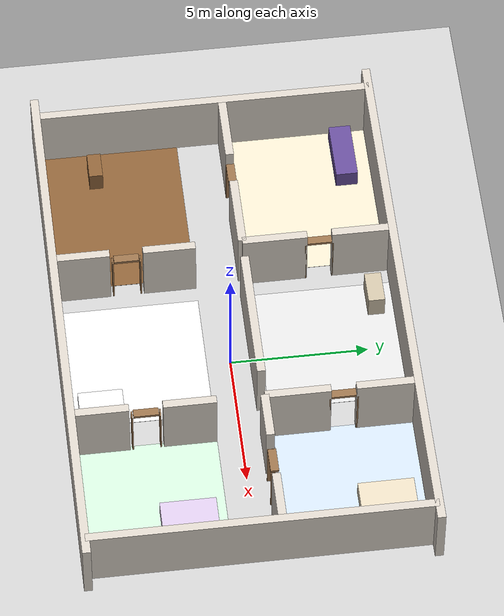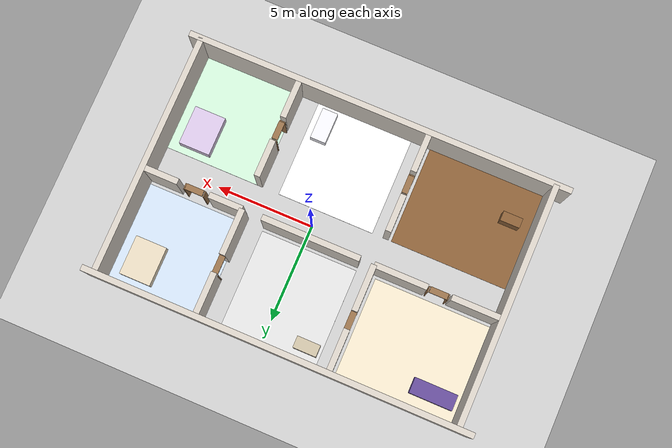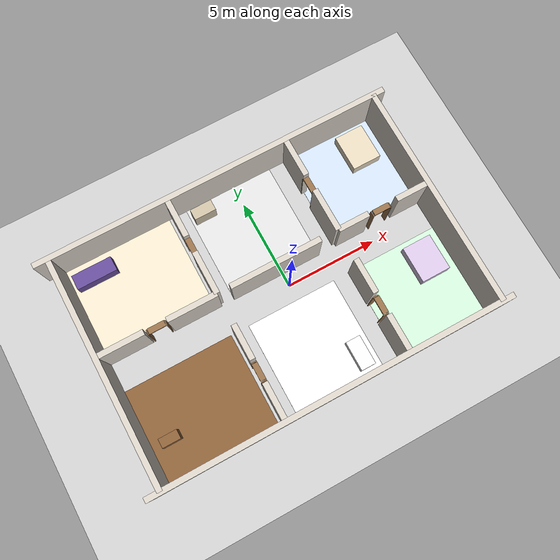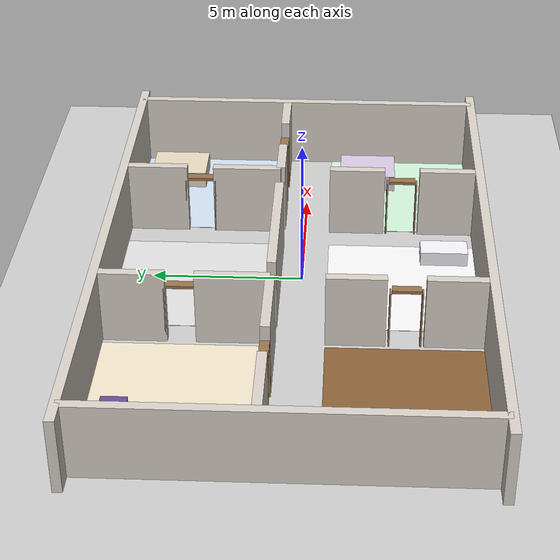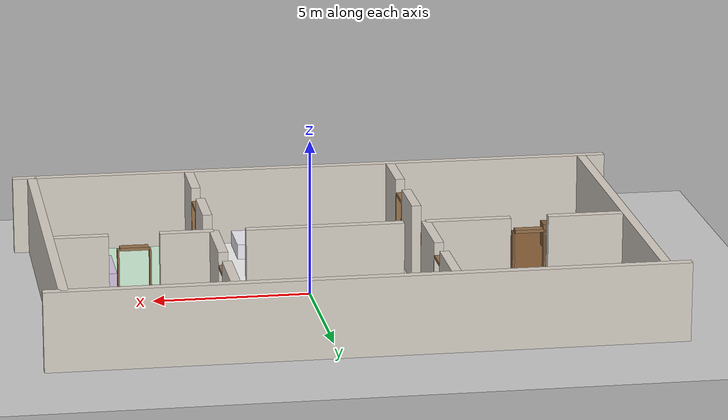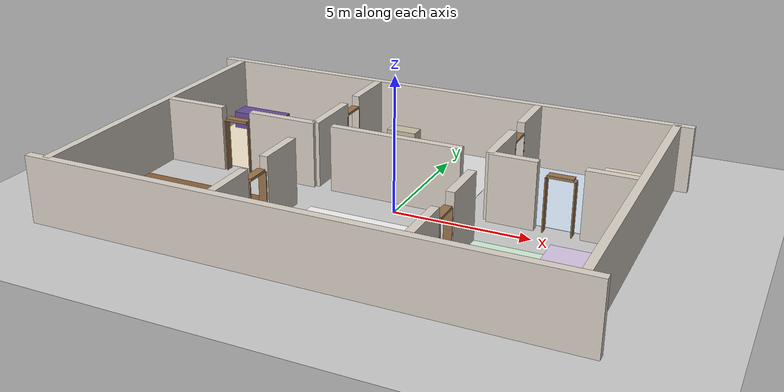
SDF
<?xml version="1.0" ?>
<sdf version="1.6">
  <world name="patrol_house">

    <!-- ======================================================
         ENVIRONMENT
    ====================================================== -->
    <include>
      <uri>model://ground_plane</uri>
    </include>

    <include>
      <uri>model://sun</uri>
    </include>

    <!-- ======================================================
         PHYSICS
    ====================================================== -->
    <physics type="ode">
      <ode>
        <solver>
          <type>quick</type>
          <iters>1000</iters>
          <sor>1.3</sor>
        </solver>
        <constraints>
          <cfm>0</cfm>
          <erp>0.2</erp>
          <contact_max_correcting_vel>100</contact_max_correcting_vel>
          <contact_surface_layer>0.001</contact_surface_layer>
        </constraints>
      </ode>
      <max_step_size>0.01</max_step_size>
      <real_time_factor>1</real_time_factor>
      <real_time_update_rate>100</real_time_update_rate>
      <gravity>0 0 -9.8</gravity>
    </physics>

    <!-- ======================================================
         SCENE LIGHTING
    ====================================================== -->
    <scene>
      <ambient>0.4 0.4 0.4 1</ambient>
      <background>0.7 0.7 0.7 1</background>
      <shadows>true</shadows>
    </scene>

    <!-- Ceiling lights (one per room) -->
    <light name="light_living_room" type="point">
      <pose>-6.85 3.65 2.4 0 0 0</pose>
      <diffuse>1 1 0.95 1</diffuse>
      <specular>0.2 0.2 0.2 1</specular>
      <attenuation><range>6</range><constant>0.3</constant><linear>0.1</linear><quadratic>0.01</quadratic></attenuation>
      <cast_shadows>false</cast_shadows>
    </light>
    <light name="light_kitchen" type="point">
      <pose>0.00 3.65 2.4 0 0 0</pose>
      <diffuse>1 1 0.95 1</diffuse>
      <specular>0.2 0.2 0.2 1</specular>
      <attenuation><range>6</range><constant>0.3</constant><linear>0.1</linear><quadratic>0.01</quadratic></attenuation>
      <cast_shadows>false</cast_shadows>
    </light>
    <light name="light_bedroom1" type="point">
      <pose>5.65 3.65 2.4 0 0 0</pose>
      <diffuse>1 1 0.95 1</diffuse>
      <specular>0.2 0.2 0.2 1</specular>
      <attenuation><range>6</range><constant>0.3</constant><linear>0.1</linear><quadratic>0.01</quadratic></attenuation>
      <cast_shadows>false</cast_shadows>
    </light>
    <light name="light_bedroom2" type="point">
      <pose>5.65 -3.35 2.4 0 0 0</pose>
      <diffuse>1 1 0.95 1</diffuse>
      <specular>0.2 0.2 0.2 1</specular>
      <attenuation><range>6</range><constant>0.3</constant><linear>0.1</linear><quadratic>0.01</quadratic></attenuation>
      <cast_shadows>false</cast_shadows>
    </light>
    <light name="light_bathroom" type="point">
      <pose>0.00 -3.35 2.4 0 0 0</pose>
      <diffuse>1 1 0.95 1</diffuse>
      <specular>0.2 0.2 0.2 1</specular>
      <attenuation><range>6</range><constant>0.3</constant><linear>0.1</linear><quadratic>0.01</quadratic></attenuation>
      <cast_shadows>false</cast_shadows>
    </light>
    <light name="light_hallway" type="point">
      <pose>-6.85 -3.35 2.4 0 0 0</pose>
      <diffuse>1 1 0.95 1</diffuse>
      <specular>0.2 0.2 0.2 1</specular>
      <attenuation><range>6</range><constant>0.3</constant><linear>0.1</linear><quadratic>0.01</quadratic></attenuation>
      <cast_shadows>false</cast_shadows>
    </light>

    <!-- ======================================================
         SHARED WALL MATERIAL (grey plaster)
    ====================================================== -->
    <!-- All walls share the same material block inline -->

    <!-- Outer South wall  (y = -6.0, full width) -->
    <model name="wall_outer_south">
      <static>true</static>
      <pose>-0.925 -6.0 1.25 0 0 0</pose>
      <link name="link">
        <collision name="col"><geometry><box><size>19.7 0.3 2.5</size></box></geometry></collision>
        <visual name="vis"><geometry><box><size>19.7 0.3 2.5</size></box></geometry>
          <material><ambient>0.85 0.82 0.78 1</ambient><diffuse>0.85 0.82 0.78 1</diffuse></material>
        </visual>
      </link>
    </model>

    <!-- Outer North wall  (y = 6.3, full width) -->
    <model name="wall_outer_north">
      <static>true</static>
      <pose>-0.925 6.3 1.25 0 0 0</pose>
      <link name="link">
        <collision name="col"><geometry><box><size>19.7 0.3 2.5</size></box></geometry></collision>
        <visual name="vis"><geometry><box><size>19.7 0.3 2.5</size></box></geometry>
          <material><ambient>0.85 0.82 0.78 1</ambient><diffuse>0.85 0.82 0.78 1</diffuse></material>
        </visual>
      </link>
    </model>

    <!-- Outer West wall  (x = -10.0, full depth) -->
    <model name="wall_outer_west">
      <static>true</static>
      <pose>-10.0 0.15 1.25 0 0 0</pose>
      <link name="link">
        <collision name="col"><geometry><box><size>0.3 12.3 2.5</size></box></geometry></collision>
        <visual name="vis"><geometry><box><size>0.3 12.3 2.5</size></box></geometry>
          <material><ambient>0.85 0.82 0.78 1</ambient><diffuse>0.85 0.82 0.78 1</diffuse></material>
        </visual>
      </link>
    </model>

    <!-- Outer East wall  (x = 8.3, full depth) -->
    <model name="wall_outer_east">
      <static>true</static>
      <pose>8.3 0.15 1.25 0 0 0</pose>
      <link name="link">
        <collision name="col"><geometry><box><size>0.3 12.3 2.5</size></box></geometry></collision>
        <visual name="vis"><geometry><box><size>0.3 12.3 2.5</size></box></geometry>
          <material><ambient>0.85 0.82 0.78 1</ambient><diffuse>0.85 0.82 0.78 1</diffuse></material>
        </visual>
      </link>
    </model>

    <!-- ─── Horizontal interior wall: y = 0.85 (middle row divider) ──────── -->
    <model name="wall_mid_w1">
      <static>true</static>
      <pose>-8.650 0.85 1.25 0 0 0</pose>
      <link name="link">
        <collision name="col"><geometry><box><size>2.40 0.3 2.5</size></box></geometry></collision>
        <visual name="vis"><geometry><box><size>2.40 0.3 2.5</size></box></geometry>
          <material><ambient>0.85 0.82 0.78 1</ambient><diffuse>0.85 0.82 0.78 1</diffuse></material>
        </visual>
      </link>
    </model>

    <!-- West segment east of D6: x = -6.25 .. -3.55 (length=2.70, centre=-4.900) -->
    <model name="wall_mid_w2">
      <static>true</static>
      <pose>-4.900 0.85 1.25 0 0 0</pose>
      <link name="link">
        <collision name="col"><geometry><box><size>2.70 0.3 2.5</size></box></geometry></collision>
        <visual name="vis"><geometry><box><size>2.70 0.3 2.5</size></box></geometry>
          <material><ambient>0.85 0.82 0.78 1</ambient><diffuse>0.85 0.82 0.78 1</diffuse></material>
        </visual>
      </link>
    </model>

    <!-- Centre segment R2↔R5: x = -2.85 .. 2.15 (length=5.0, centre=-0.35)
         No door between R2 and R5 — full wall -->
    <model name="wall_mid_c">
      <static>true</static>
      <pose>-0.35 0.85 1.25 0 0 0</pose>
      <link name="link">
        <collision name="col"><geometry><box><size>5.0 0.3 2.5</size></box></geometry></collision>
        <visual name="vis"><geometry><box><size>5.0 0.3 2.5</size></box></geometry>
          <material><ambient>0.85 0.82 0.78 1</ambient><diffuse>0.85 0.82 0.78 1</diffuse></material>
        </visual>
      </link>
    </model>

    <model name="wall_mid_e1">
      <static>true</static>
      <pose>4.000 0.85 1.25 0 0 0</pose>
      <link name="link">
        <collision name="col"><geometry><box><size>1.70 0.3 2.5</size></box></geometry></collision>
        <visual name="vis"><geometry><box><size>1.70 0.3 2.5</size></box></geometry>
          <material><ambient>0.85 0.82 0.78 1</ambient><diffuse>0.85 0.82 0.78 1</diffuse></material>
        </visual>
      </link>
    </model>
    <model name="wall_mid_e2">
      <static>true</static>
      <pose>7.300 0.85 1.25 0 0 0</pose>
      <link name="link">
        <collision name="col"><geometry><box><size>1.70 0.3 2.5</size></box></geometry></collision>
        <visual name="vis"><geometry><box><size>1.70 0.3 2.5</size></box></geometry>
          <material><ambient>0.85 0.82 0.78 1</ambient><diffuse>0.85 0.82 0.78 1</diffuse></material>
        </visual>
      </link>
    </model>

    <!-- ─── Vertical interior wall: x = -3.55 (divides R1/R6 from R2/R5) ─── -->
    <!-- North half: y = 0.85..6.15 — no door (full) -->
    <!-- D1 (R1↔R2) centred at y=3.65, gap 3.20..4.10 →
         north seg: 4.10..6.15 (len=2.05, cen=5.125), south seg: 0.85..3.20 (len=2.35, cen=2.025) -->
    <model name="wall_ns_r1r2_n">
      <static>true</static>
      <pose>-3.55 5.125 1.25 0 0 0</pose>
      <link name="link">
        <collision name="col"><geometry><box><size>0.3 2.05 2.5</size></box></geometry></collision>
        <visual name="vis"><geometry><box><size>0.3 2.05 2.5</size></box></geometry>
          <material><ambient>0.85 0.82 0.78 1</ambient><diffuse>0.85 0.82 0.78 1</diffuse></material>
        </visual>
      </link>
    </model>
    <model name="wall_ns_r1r2_s">
      <static>true</static>
      <pose>-3.55 2.025 1.25 0 0 0</pose>
      <link name="link">
        <collision name="col"><geometry><box><size>0.3 2.35 2.5</size></box></geometry></collision>
        <visual name="vis"><geometry><box><size>0.3 2.35 2.5</size></box></geometry>
          <material><ambient>0.85 0.82 0.78 1</ambient><diffuse>0.85 0.82 0.78 1</diffuse></material>
        </visual>
      </link>
    </model>

    <!-- South half: y = -5.85..-0.85
         D5 (R6↔R5) centred at y=-3.35 with widened gap -3.95..-2.75 (1.20 m) -->
    <model name="wall_ns_r6r5_n">
      <static>true</static>
      <pose>-3.55 -1.800 1.25 0 0 0</pose>
      <link name="link">
        <collision name="col"><geometry><box><size>0.3 1.90 2.5</size></box></geometry></collision>
        <visual name="vis"><geometry><box><size>0.3 1.90 2.5</size></box></geometry>
          <material><ambient>0.85 0.82 0.78 1</ambient><diffuse>0.85 0.82 0.78 1</diffuse></material>
        </visual>
      </link>
    </model>
    <model name="wall_ns_r6r5_s">
      <static>true</static>
      <pose>-3.55 -4.900 1.25 0 0 0</pose>
      <link name="link">
        <collision name="col"><geometry><box><size>0.3 1.90 2.5</size></box></geometry></collision>
        <visual name="vis"><geometry><box><size>0.3 1.90 2.5</size></box></geometry>
          <material><ambient>0.85 0.82 0.78 1</ambient><diffuse>0.85 0.82 0.78 1</diffuse></material>
        </visual>
      </link>
    </model>

    <!-- ─── Vertical interior wall: x = 3.15 (divides R2/R5 from R3/R4) ─── -->
    <!-- D2 (R2↔R3) centred at y=3.65, gap 3.20..4.10 -->
    <model name="wall_ns_r2r3_n">
      <static>true</static>
      <pose>3.15 5.125 1.25 0 0 0</pose>
      <link name="link">
        <collision name="col"><geometry><box><size>0.3 2.05 2.5</size></box></geometry></collision>
        <visual name="vis"><geometry><box><size>0.3 2.05 2.5</size></box></geometry>
          <material><ambient>0.85 0.82 0.78 1</ambient><diffuse>0.85 0.82 0.78 1</diffuse></material>
        </visual>
      </link>
    </model>
    <model name="wall_ns_r2r3_s">
      <static>true</static>
      <pose>3.15 2.025 1.25 0 0 0</pose>
      <link name="link">
        <collision name="col"><geometry><box><size>0.3 2.35 2.5</size></box></geometry></collision>
        <visual name="vis"><geometry><box><size>0.3 2.35 2.5</size></box></geometry>
          <material><ambient>0.85 0.82 0.78 1</ambient><diffuse>0.85 0.82 0.78 1</diffuse></material>
        </visual>
      </link>
    </model>

    <!-- D4 (R5↔R4) centred at y=-3.35, widened gap -3.95..-2.75 -->
    <model name="wall_ns_r5r4_n">
      <static>true</static>
      <pose>3.15 -1.800 1.25 0 0 0</pose>
      <link name="link">
        <collision name="col"><geometry><box><size>0.3 1.90 2.5</size></box></geometry></collision>
        <visual name="vis"><geometry><box><size>0.3 1.90 2.5</size></box></geometry>
          <material><ambient>0.85 0.82 0.78 1</ambient><diffuse>0.85 0.82 0.78 1</diffuse></material>
        </visual>
      </link>
    </model>
    <model name="wall_ns_r5r4_s">
      <static>true</static>
      <pose>3.15 -4.900 1.25 0 0 0</pose>
      <link name="link">
        <collision name="col"><geometry><box><size>0.3 1.90 2.5</size></box></geometry></collision>
        <visual name="vis"><geometry><box><size>0.3 1.90 2.5</size></box></geometry>
          <material><ambient>0.85 0.82 0.78 1</ambient><diffuse>0.85 0.82 0.78 1</diffuse></material>
        </visual>
      </link>
    </model>

    <!-- D1: R1↔R2 – N-S wall at x=-3.55, centred y=3.65 -->
    <model name="door_frame_D1">
      <static>true</static>
      <pose>-3.55 3.65 1.0 0 0 0</pose>
      <link name="link">
        <!-- Door frame sides (jambs) -->
        <visual name="jamb_left">
          <pose>0 -0.5 0 0 0 0</pose>
          <geometry><box><size>0.3 0.05 2.0</size></box></geometry>
          <material><ambient>0.6 0.45 0.3 1</ambient><diffuse>0.6 0.45 0.3 1</diffuse></material>
        </visual>
        <visual name="jamb_right">
          <pose>0 0.5 0 0 0 0</pose>
          <geometry><box><size>0.3 0.05 2.0</size></box></geometry>
          <material><ambient>0.6 0.45 0.3 1</ambient><diffuse>0.6 0.45 0.3 1</diffuse></material>
        </visual>
        <visual name="lintel">
          <pose>0 0 1.05 0 0 0</pose>
          <geometry><box><size>0.3 0.9 0.1</size></box></geometry>
          <material><ambient>0.6 0.45 0.3 1</ambient><diffuse>0.6 0.45 0.3 1</diffuse></material>
        </visual>
      </link>
    </model>

    <!-- D2: R2↔R3 – N-S wall at x=3.15, centred y=3.65 -->
    <model name="door_frame_D2">
      <static>true</static>
      <pose>3.15 3.65 1.0 0 0 0</pose>
      <link name="link">
        <visual name="jamb_left">
          <pose>0 -0.5 0 0 0 0</pose>
          <geometry><box><size>0.3 0.05 2.0</size></box></geometry>
          <material><ambient>0.6 0.45 0.3 1</ambient><diffuse>0.6 0.45 0.3 1</diffuse></material>
        </visual>
        <visual name="jamb_right">
          <pose>0 0.5 0 0 0 0</pose>
          <geometry><box><size>0.3 0.05 2.0</size></box></geometry>
          <material><ambient>0.6 0.45 0.3 1</ambient><diffuse>0.6 0.45 0.3 1</diffuse></material>
        </visual>
        <visual name="lintel">
          <pose>0 0 1.05 0 0 0</pose>
          <geometry><box><size>0.3 0.9 0.1</size></box></geometry>
          <material><ambient>0.6 0.45 0.3 1</ambient><diffuse>0.6 0.45 0.3 1</diffuse></material>
        </visual>
      </link>
    </model>

    <!-- D3: R3↔R4 – E-W wall at y=0.85, centred x=5.65 (rotated 90°) -->
    <model name="door_frame_D3">
      <static>true</static>
      <pose>5.65 0.85 1.0 0 0 1.5708</pose>
      <link name="link">
        <visual name="jamb_left">
          <pose>0 -0.5 0 0 0 0</pose>
          <geometry><box><size>0.3 0.05 2.0</size></box></geometry>
          <material><ambient>0.6 0.45 0.3 1</ambient><diffuse>0.6 0.45 0.3 1</diffuse></material>
        </visual>
        <visual name="jamb_right">
          <pose>0 0.5 0 0 0 0</pose>
          <geometry><box><size>0.3 0.05 2.0</size></box></geometry>
          <material><ambient>0.6 0.45 0.3 1</ambient><diffuse>0.6 0.45 0.3 1</diffuse></material>
        </visual>
        <visual name="lintel">
          <pose>0 0 1.05 0 0 0</pose>
          <geometry><box><size>0.3 0.9 0.1</size></box></geometry>
          <material><ambient>0.6 0.45 0.3 1</ambient><diffuse>0.6 0.45 0.3 1</diffuse></material>
        </visual>
      </link>
    </model>

    <!-- D4: R4↔R5 – N-S wall at x=3.15, centred y=-3.35 -->
    <model name="door_frame_D4">
      <static>true</static>
      <pose>3.15 -3.35 1.0 0 0 0</pose>
      <link name="link">
        <visual name="jamb_left">
          <pose>0 -0.5 0 0 0 0</pose>
          <geometry><box><size>0.3 0.05 2.0</size></box></geometry>
          <material><ambient>0.6 0.45 0.3 1</ambient><diffuse>0.6 0.45 0.3 1</diffuse></material>
        </visual>
        <visual name="jamb_right">
          <pose>0 0.5 0 0 0 0</pose>
          <geometry><box><size>0.3 0.05 2.0</size></box></geometry>
          <material><ambient>0.6 0.45 0.3 1</ambient><diffuse>0.6 0.45 0.3 1</diffuse></material>
        </visual>
        <visual name="lintel">
          <pose>0 0 1.05 0 0 0</pose>
          <geometry><box><size>0.3 0.9 0.1</size></box></geometry>
          <material><ambient>0.6 0.45 0.3 1</ambient><diffuse>0.6 0.45 0.3 1</diffuse></material>
        </visual>
      </link>
    </model>

    <!-- D5: R5↔R6 – N-S wall at x=-3.55, centred y=-3.35 -->
    <model name="door_frame_D5">
      <static>true</static>
      <pose>-3.55 -3.35 1.0 0 0 0</pose>
      <link name="link">
        <visual name="jamb_left">
          <pose>0 -0.5 0 0 0 0</pose>
          <geometry><box><size>0.3 0.05 2.0</size></box></geometry>
          <material><ambient>0.6 0.45 0.3 1</ambient><diffuse>0.6 0.45 0.3 1</diffuse></material>
        </visual>
        <visual name="jamb_right">
          <pose>0 0.5 0 0 0 0</pose>
          <geometry><box><size>0.3 0.05 2.0</size></box></geometry>
          <material><ambient>0.6 0.45 0.3 1</ambient><diffuse>0.6 0.45 0.3 1</diffuse></material>
        </visual>
        <visual name="lintel">
          <pose>0 0 1.05 0 0 0</pose>
          <geometry><box><size>0.3 0.9 0.1</size></box></geometry>
          <material><ambient>0.6 0.45 0.3 1</ambient><diffuse>0.6 0.45 0.3 1</diffuse></material>
        </visual>
      </link>
    </model>

    <!-- D6: R6↔R1 – E-W wall at y=0.85, centred x=-6.85 (rotated 90°) -->
    <model name="door_frame_D6">
      <static>true</static>
      <pose>-6.85 0.85 1.0 0 0 1.5708</pose>
      <link name="link">
        <visual name="jamb_left">
          <pose>0 -0.5 0 0 0 0</pose>
          <geometry><box><size>0.3 0.05 2.0</size></box></geometry>
          <material><ambient>0.6 0.45 0.3 1</ambient><diffuse>0.6 0.45 0.3 1</diffuse></material>
        </visual>
        <visual name="jamb_right">
          <pose>0 0.5 0 0 0 0</pose>
          <geometry><box><size>0.3 0.05 2.0</size></box></geometry>
          <material><ambient>0.6 0.45 0.3 1</ambient><diffuse>0.6 0.45 0.3 1</diffuse></material>
        </visual>
        <visual name="lintel">
          <pose>0 0 1.05 0 0 0</pose>
          <geometry><box><size>0.3 0.9 0.1</size></box></geometry>
          <material><ambient>0.6 0.45 0.3 1</ambient><diffuse>0.6 0.45 0.3 1</diffuse></material>
        </visual>
      </link>
    </model>

    <!-- ======================================================
         FLOOR TILES (one per room for visual room distinction)
    ====================================================== -->

    <!-- R1: Living Room – warm beige -->
    <model name="floor_living_room">
      <static>true</static>
      <pose>-6.85 3.65 0.005 0 0 0</pose>
      <link name="link">
        <visual name="vis">
          <geometry><box><size>6.0 5.0 0.01</size></box></geometry>
          <material><ambient>0.95 0.90 0.80 1</ambient><diffuse>0.95 0.90 0.80 1</diffuse></material>
        </visual>
      </link>
    </model>

    <!-- R2: Kitchen – light grey tile -->
    <model name="floor_kitchen">
      <static>true</static>
      <pose>-0.35 3.65 0.005 0 0 0</pose>
      <link name="link">
        <visual name="vis">
          <geometry><box><size>5.0 5.0 0.01</size></box></geometry>
          <material><ambient>0.88 0.88 0.88 1</ambient><diffuse>0.88 0.88 0.88 1</diffuse></material>
        </visual>
      </link>
    </model>

    <!-- R3: Bedroom 1 – pale blue -->
    <model name="floor_bedroom1">
      <static>true</static>
      <pose>5.65 3.65 0.005 0 0 0</pose>
      <link name="link">
        <visual name="vis">
          <geometry><box><size>5.0 5.0 0.01</size></box></geometry>
          <material><ambient>0.82 0.88 0.95 1</ambient><diffuse>0.82 0.88 0.95 1</diffuse></material>
        </visual>
      </link>
    </model>

    <!-- R4: Bedroom 2 – pale green -->
    <model name="floor_bedroom2">
      <static>true</static>
      <pose>5.65 -3.35 0.005 0 0 0</pose>
      <link name="link">
        <visual name="vis">
          <geometry><box><size>5.0 5.0 0.01</size></box></geometry>
          <material><ambient>0.82 0.95 0.85 1</ambient><diffuse>0.82 0.95 0.85 1</diffuse></material>
        </visual>
      </link>
    </model>

    <!-- R5: Bathroom – white tile -->
    <model name="floor_bathroom">
      <static>true</static>
      <pose>-0.35 -3.35 0.005 0 0 0</pose>
      <link name="link">
        <visual name="vis">
          <geometry><box><size>5.0 5.0 0.01</size></box></geometry>
          <material><ambient>0.97 0.97 0.97 1</ambient><diffuse>0.97 0.97 0.97 1</diffuse></material>
        </visual>
      </link>
    </model>

    <!-- R6: Hallway – dark wood -->
    <model name="floor_hallway">
      <static>true</static>
      <pose>-6.85 -3.35 0.005 0 0 0</pose>
      <link name="link">
        <visual name="vis">
          <geometry><box><size>6.0 5.0 0.01</size></box></geometry>
          <material><ambient>0.55 0.38 0.22 1</ambient><diffuse>0.55 0.38 0.22 1</diffuse></material>
        </visual>
      </link>
    </model>

    <!-- R1: Sofa -->
    <model name="sofa">
      <static>true</static>
      <pose>-8.5 5.2 0.35 0 0 0</pose>
      <link name="link">
        <visual name="vis"><geometry><box><size>2.2 0.8 0.7</size></box></geometry>
          <material><ambient>0.4 0.3 0.6 1</ambient><diffuse>0.4 0.3 0.6 1</diffuse></material>
        </visual>
      </link>
    </model>

    <!-- R2: Kitchen counter -->
    <model name="kitchen_counter">
      <static>true</static>
      <pose>-2.1 5.5 0.45 0 0 0</pose>
      <link name="link">
        <visual name="vis"><geometry><box><size>1.2 0.6 0.9</size></box></geometry>
          <material><ambient>0.8 0.75 0.65 1</ambient><diffuse>0.8 0.75 0.65 1</diffuse></material>
        </visual>
      </link>
    </model>

    <!-- R3: Bed (Bedroom 1) -->
    <model name="bed_1">
      <static>true</static>
      <pose>6.8 4.8 0.3 0 0 0</pose>
      <link name="link">
        <visual name="vis"><geometry><box><size>1.6 2.0 0.6</size></box></geometry>
          <material><ambient>0.9 0.85 0.75 1</ambient><diffuse>0.9 0.85 0.75 1</diffuse></material>
        </visual>
      </link>
    </model>

    <!-- R4: Bed (Bedroom 2) -->
    <model name="bed_2">
      <static>true</static>
      <pose>6.8 -2.2 0.3 0 0 0</pose>
      <link name="link">
        <visual name="vis"><geometry><box><size>1.6 2.0 0.6</size></box></geometry>
          <material><ambient>0.85 0.78 0.9 1</ambient><diffuse>0.85 0.78 0.9 1</diffuse></material>
        </visual>
      </link>
    </model>

    <!-- R5: Bathtub -->
    <model name="bathtub">
      <static>true</static>
      <pose>1.4 -4.8 0.25 0 0 0</pose>
      <link name="link">
        <visual name="vis"><geometry><box><size>0.8 1.6 0.5</size></box></geometry>
          <material><ambient>0.95 0.95 0.98 1</ambient><diffuse>0.95 0.95 0.98 1</diffuse></material>
        </visual>
      </link>
    </model>

    <!-- R6: Hall table -->
    <model name="hall_table">
      <static>true</static>
      <pose>-8.8 -4.0 0.4 0 0 0</pose>
      <link name="link">
        <visual name="vis"><geometry><box><size>1.0 0.5 0.8</size></box></geometry>
          <material><ambient>0.55 0.38 0.22 1</ambient><diffuse>0.55 0.38 0.22 1</diffuse></material>
        </visual>
      </link>
    </model>

    <!-- ======================================================
         SPHERICAL COORDINATES (kept from reference file)
    ====================================================== -->
    <spherical_coordinates>
      <surface_model>EARTH_WGS84</surface_model>
      <latitude_deg>47.3667</latitude_deg>
      <longitude_deg>8.5500</longitude_deg>
      <elevation>500.0</elevation>
      <heading_deg>0</heading_deg>
    </spherical_coordinates>

  </world>
</sdf>
